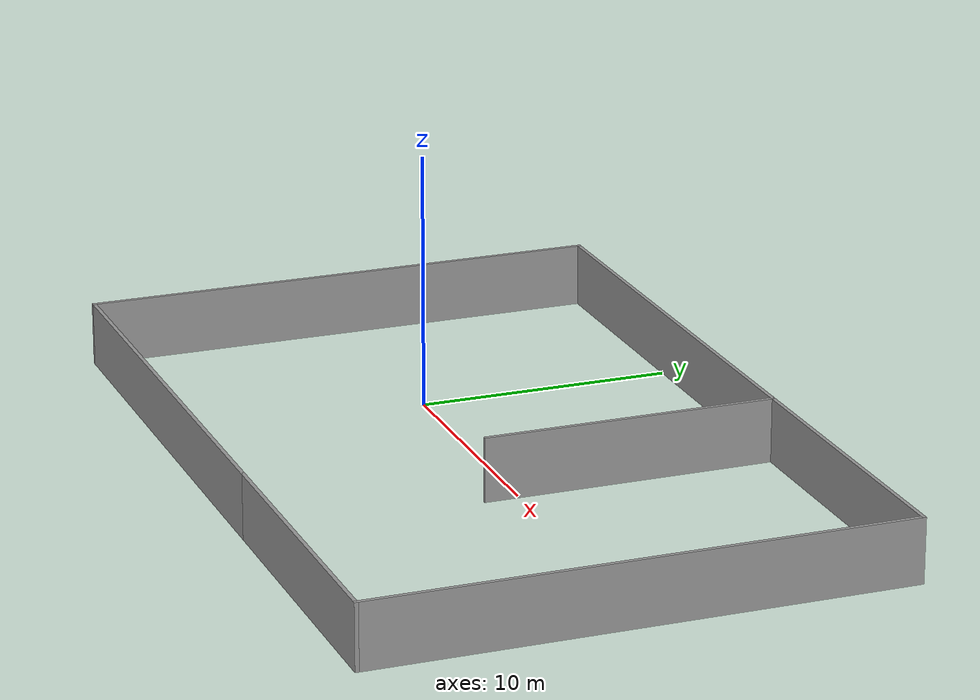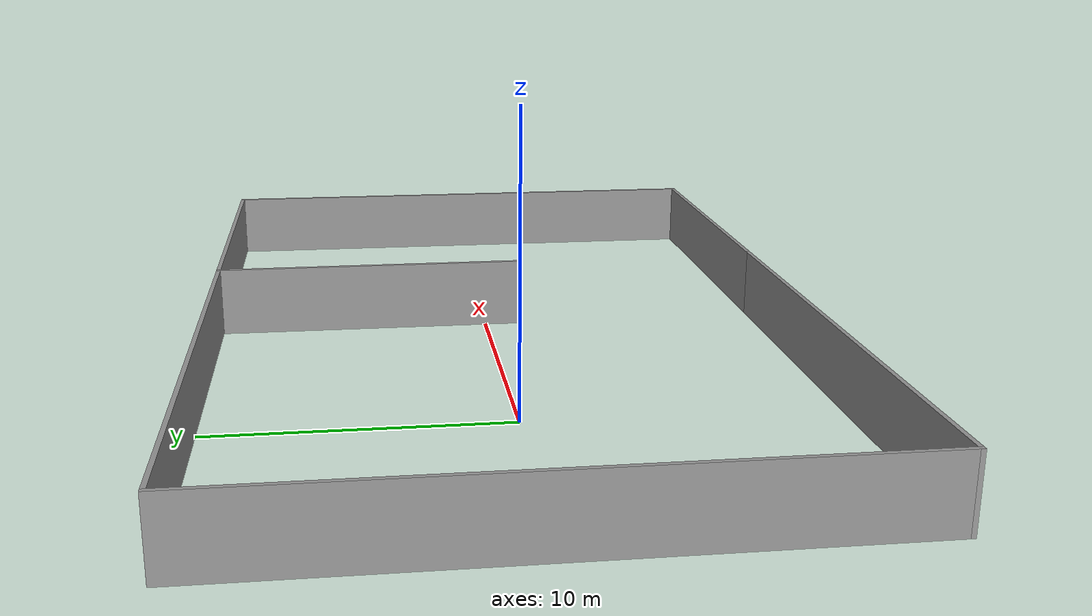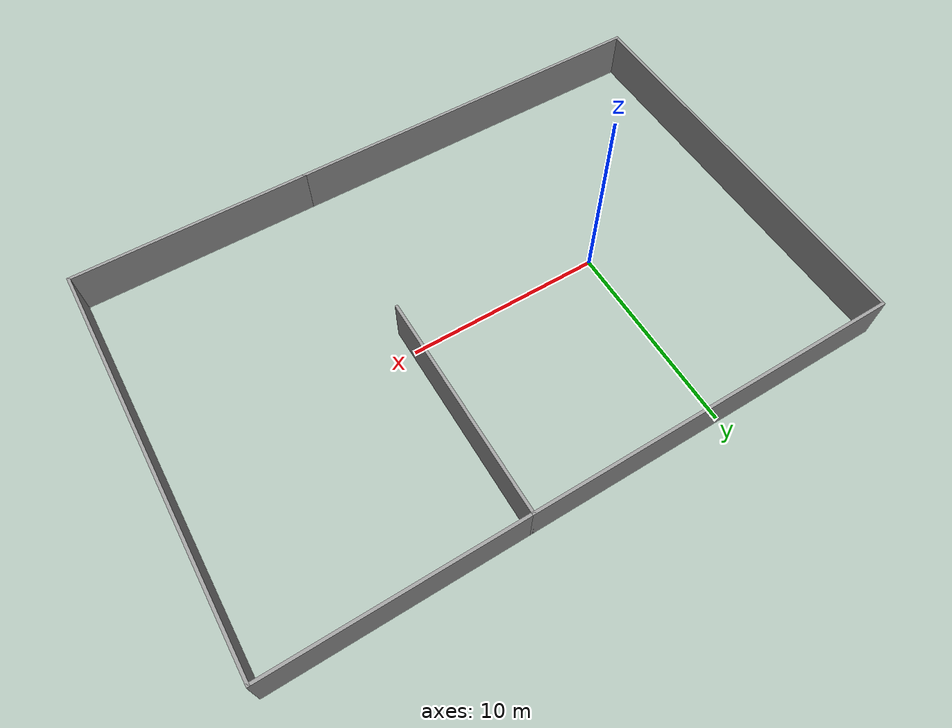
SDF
<?xml version='1.0'?>
<sdf version='1.6'>
  <model name='modelarech'>
    <pose frame=''>6.72266 -0.220693 0 0 -0 0</pose>
    <link name='Wall_10'>
      <collision name='Wall_10_Collision'>
        <geometry>
          <box>
            <size>12.5 0.15 2.5</size>
          </box>
        </geometry>
        <pose frame=''>0 0 1.25 0 -0 0</pose>
      </collision>
      <visual name='Wall_10_Visual'>
        <pose frame=''>0 0 1.25 0 -0 0</pose>
        <geometry>
          <box>
            <size>12.5 0.15 2.5</size>
          </box>
        </geometry>
        <material>
          <script>
            <uri>file://media/materials/scripts/gazebo.material</uri>
            <name>Gazebo/Grey</name>
          </script>
          <ambient>1 1 1 1</ambient>
        </material>
        <meta>
          <layer>0</layer>
        </meta>
      </visual>
      <pose frame=''>9.55 10.3 0 0 -0 0</pose>
    </link>
    <link name='Wall_11'>
      <collision name='Wall_11_Collision'>
        <geometry>
          <box>
            <size>20.75 0.15 2.5</size>
          </box>
        </geometry>
        <pose frame=''>0 0 1.25 0 -0 0</pose>
      </collision>
      <visual name='Wall_11_Visual'>
        <pose frame=''>0 0 1.25 0 -0 0</pose>
        <geometry>
          <box>
            <size>20.75 0.15 2.5</size>
          </box>
        </geometry>
        <material>
          <script>
            <uri>file://media/materials/scripts/gazebo.material</uri>
            <name>Gazebo/Grey</name>
          </script>
          <ambient>1 1 1 1</ambient>
        </material>
        <meta>
          <layer>0</layer>
        </meta>
      </visual>
      <pose frame=''>15.725 0 0 0 -0 -1.5708</pose>
    </link>
    <link name='Wall_14'>
      <collision name='Wall_14_Collision'>
        <geometry>
          <box>
            <size>12.25 0.15 2.5</size>
          </box>
        </geometry>
        <pose frame=''>0 0 1.25 0 -0 0</pose>
      </collision>
      <visual name='Wall_14_Visual'>
        <pose frame=''>0 0 1.25 0 -0 0</pose>
        <geometry>
          <box>
            <size>12.25 0.15 2.5</size>
          </box>
        </geometry>
        <material>
          <script>
            <uri>file://media/materials/scripts/gazebo.material</uri>
            <name>Gazebo/Grey</name>
          </script>
          <ambient>1 1 1 1</ambient>
        </material>
        <meta>
          <layer>0</layer>
        </meta>
      </visual>
      <pose frame=''>9.675 -10.3 0 0 -0 3.14159</pose>
    </link>
    <link name='Wall_18'>
      <collision name='Wall_18_Collision'>
        <geometry>
          <box>
            <size>11.5 0.15 2.5</size>
          </box>
        </geometry>
        <pose frame=''>0 0 1.25 0 -0 0</pose>
      </collision>
      <visual name='Wall_18_Visual'>
        <pose frame=''>0 0 1.25 0 -0 0</pose>
        <geometry>
          <box>
            <size>11.5 0.15 2.5</size>
          </box>
        </geometry>
        <material>
          <script>
            <uri>file://media/materials/scripts/gazebo.material</uri>
            <name>Gazebo/Grey</name>
          </script>
          <ambient>1 1 1 1</ambient>
        </material>
        <meta>
          <layer>0</layer>
        </meta>
      </visual>
      <pose frame=''>3.375 4.625 0 0 -0 -1.5708</pose>
    </link>
    <link name='Wall_7'>
      <collision name='Wall_7_Collision'>
        <geometry>
          <box>
            <size>19.5 0.15 2.5</size>
          </box>
        </geometry>
        <pose frame=''>0 0 1.25 0 -0 0</pose>
      </collision>
      <visual name='Wall_7_Visual'>
        <pose frame=''>0 0 1.25 0 -0 0</pose>
        <geometry>
          <box>
            <size>19.5 0.15 2.5</size>
          </box>
        </geometry>
        <material>
          <script>
            <uri>file://media/materials/scripts/gazebo.material</uri>
            <name>Gazebo/Grey</name>
          </script>
          <ambient>1 1 1 1</ambient>
        </material>
        <meta>
          <layer>0</layer>
        </meta>
      </visual>
      <pose frame=''>-6.05 -10.3 0 0 -0 3.14159</pose>
    </link>
    <link name='Wall_8'>
      <collision name='Wall_8_Collision'>
        <geometry>
          <box>
            <size>20.75 0.15 2.5</size>
          </box>
        </geometry>
        <pose frame=''>0 0 1.25 0 -0 0</pose>
      </collision>
      <visual name='Wall_8_Visual'>
        <pose frame=''>0 0 1.25 0 -0 0</pose>
        <geometry>
          <box>
            <size>20.75 0.15 2.5</size>
          </box>
        </geometry>
        <material>
          <script>
            <uri>file://media/materials/scripts/gazebo.material</uri>
            <name>Gazebo/Grey</name>
          </script>
          <ambient>1 1 1 1</ambient>
        </material>
        <meta>
          <layer>0</layer>
        </meta>
      </visual>
      <pose frame=''>-15.725 0 0 0 -0 1.5708</pose>
    </link>
    <link name='Wall_9'>
      <collision name='Wall_9_Collision'>
        <geometry>
          <box>
            <size>19.25 0.15 2.5</size>
          </box>
        </geometry>
        <pose frame=''>0 0 1.25 0 -0 0</pose>
      </collision>
      <visual name='Wall_9_Visual'>
        <pose frame=''>0 0 1.25 0 -0 0</pose>
        <geometry>
          <box>
            <size>19.25 0.15 2.5</size>
          </box>
        </geometry>
        <material>
          <script>
            <uri>file://media/materials/scripts/gazebo.material</uri>
            <name>Gazebo/Grey</name>
          </script>
          <ambient>1 1 1 1</ambient>
        </material>
        <meta>
          <layer>0</layer>
        </meta>
      </visual>
      <pose frame=''>-6.175 10.3 0 0 -0 0</pose>
    </link>
    <static>1</static>
  </model>
</sdf>
